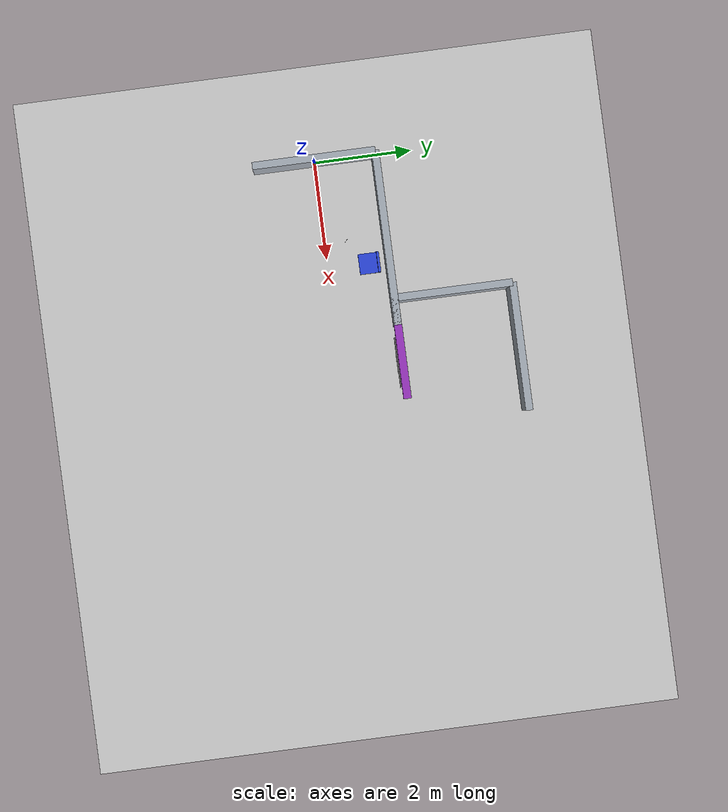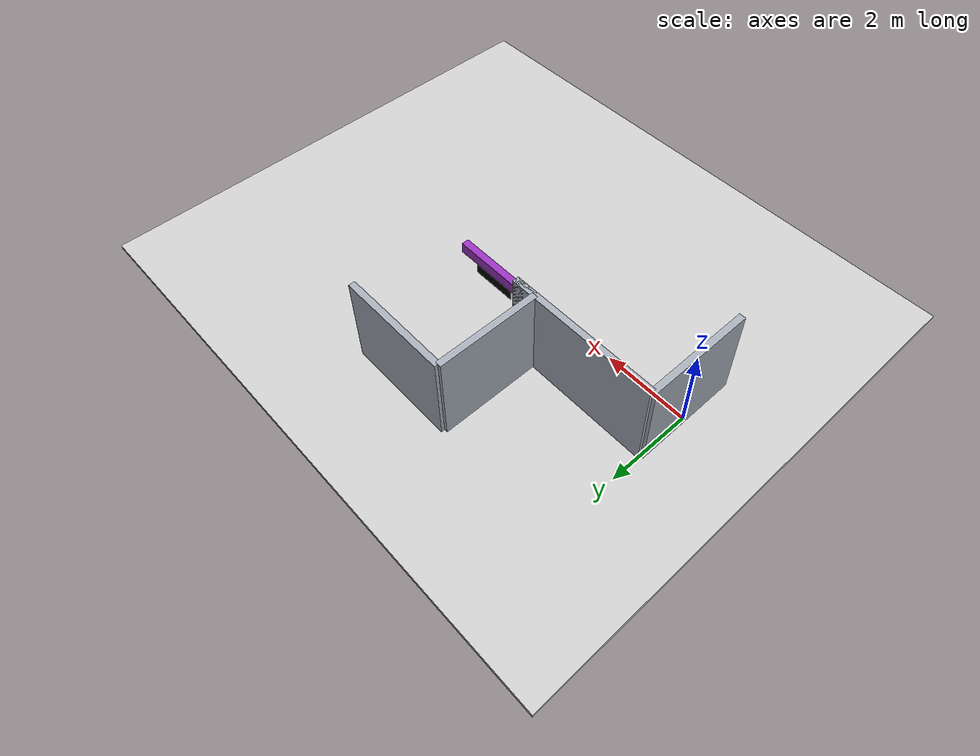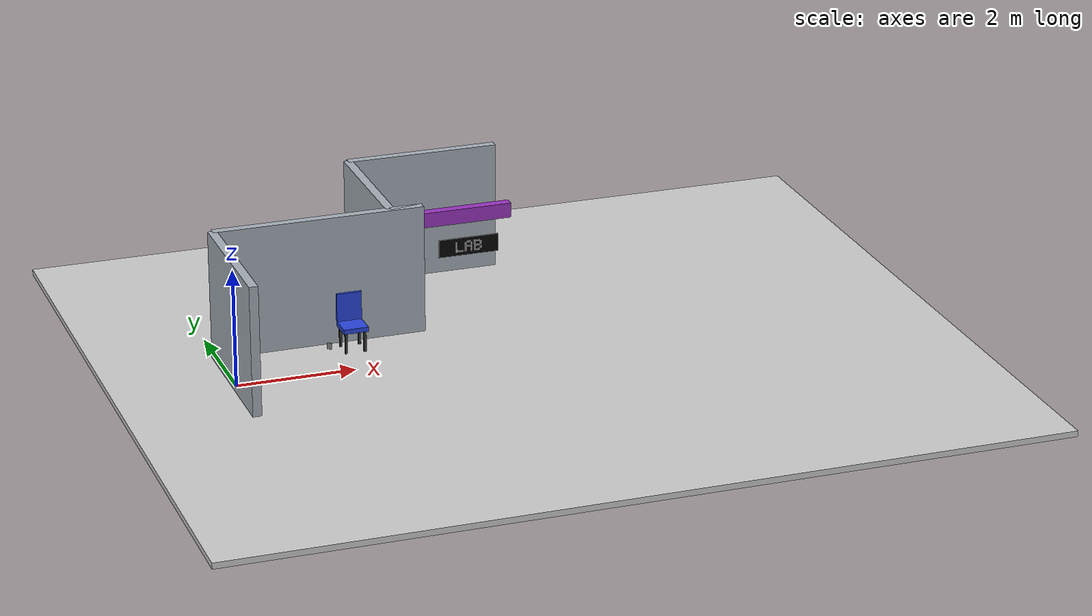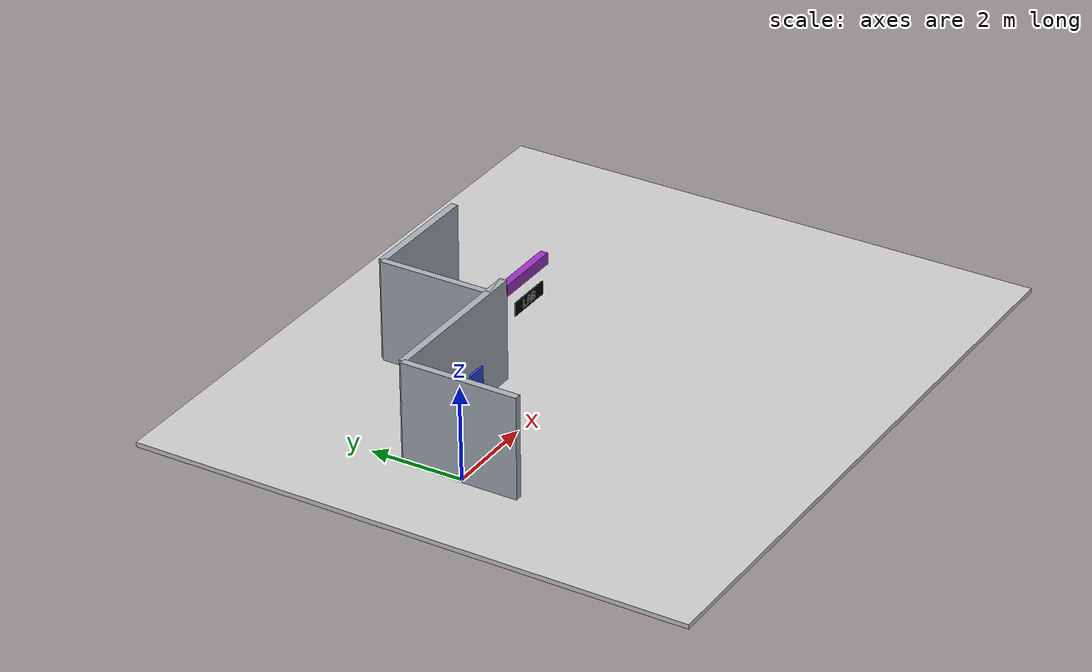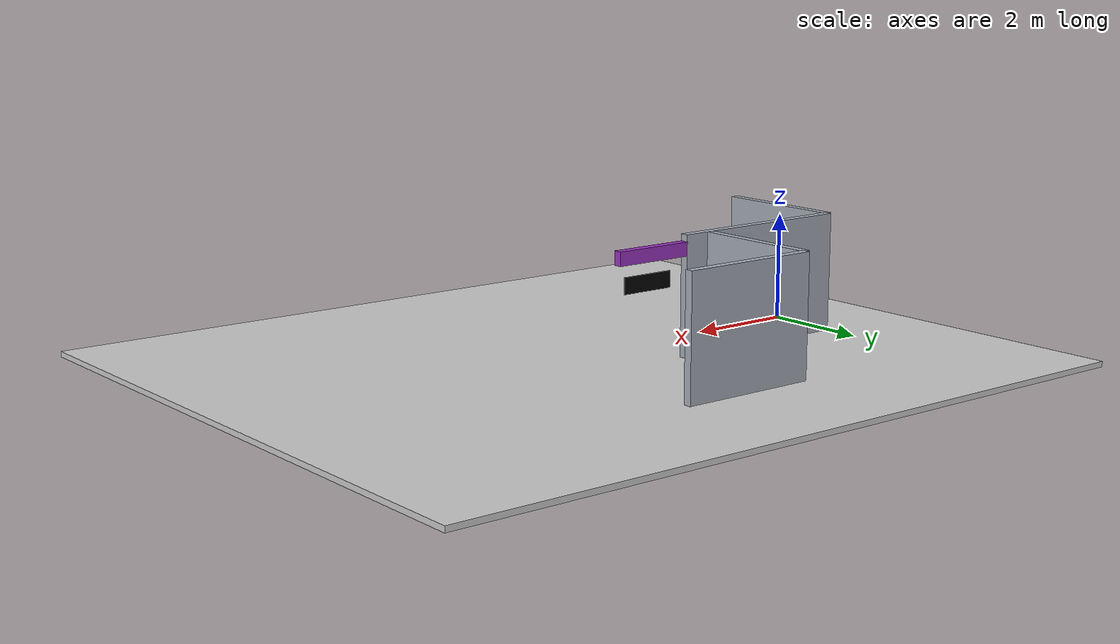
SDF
<sdf version="1.9">
 <world name="default">
  <model name="ground_plane">
   <static>true</static>
   <pose>4.95 0 -0.05 0 0 0</pose>
   <link name="body">
    <collision name="collision"><geometry><box><size>13.9 12 0.1</size></box></geometry></collision>
    <visual name="visual">
     <geometry><box><size>13.9 12 0.1</size></box></geometry>
     <material><ambient>0.8 0.8 0.8 1</ambient><diffuse>0.8 0.8 0.8 1</diffuse></material>
    </visual>
   </link>
  </model>
  <model name="start_wall">
   <static>true</static>
   <pose>0 0 1.1 0 0 0</pose>
   <link name="body">
    <collision name="collision"><geometry><box><size>0.15 2.5 2.2</size></box></geometry></collision>
    <visual name="visual">
     <geometry><box><size>0.15 2.5 2.2</size></box></geometry>
     <material><ambient>0.65 0.68 0.72 1</ambient><diffuse>0.65 0.68 0.72 1</diffuse></material>
    </visual>
   </link>
  </model>
  <model name="hall_1_1">
   <static>true</static>
   <pose>1.775 1.25 1.1 0 0 0</pose>
   <link name="body">
    <collision name="collision"><geometry><box><size>3.55 0.15 2.2</size></box></geometry></collision>
    <visual name="visual">
     <geometry><box><size>3.55 0.15 2.2</size></box></geometry>
     <material><ambient>0.65 0.68 0.72 1</ambient><diffuse>0.65 0.68 0.72 1</diffuse></material>
    </visual>
   </link>
  </model>
  <model name="room_1_1_-1">
   <static>true</static>
   <pose>3.0 2.45 1.1 0 0 0</pose>
   <link name="body">
    <collision name="collision"><geometry><box><size>0.15 2.4 2.2</size></box></geometry></collision>
    <visual name="visual">
     <geometry><box><size>0.15 2.4 2.2</size></box></geometry>
     <material><ambient>0.65 0.68 0.72 1</ambient><diffuse>0.65 0.68 0.72 1</diffuse></material>
    </visual>
   </link>
  </model>
  <model name="room_end_1_1">
   <static>true</static>
   <pose>4.3 3.65 1.1 0 0 0</pose>
   <link name="body">
    <collision name="collision"><geometry><box><size>2.6 0.15 2.2</size></box></geometry></collision>
    <visual name="visual">
     <geometry><box><size>2.6 0.15 2.2</size></box></geometry>
     <material><ambient>0.65 0.68 0.72 1</ambient><diffuse>0.65 0.68 0.72 1</diffuse></material>
    </visual>
   </link>
  </model>
  <model name="jamb_1_1_-1">
   <static>true</static>
   <pose>3.275 1.25 1.1 0 0 0</pose>
   <link name="body">
    <collision name="collision"><geometry><box><size>0.55 0.15 2.2</size></box></geometry></collision>
    <visual name="visual">
     <geometry><box><size>0.55 0.15 2.2</size></box></geometry>
     <material><ambient>0.65 0.68 0.72 1</ambient><diffuse>0.65 0.68 0.72 1</diffuse></material>
    </visual>
   </link>
  </model>
  <model name="chair_seat">
   <static>true</static>
   <pose>2.2 0.85 0.4 0 0 0</pose>
   <link name="body">
    <collision name="collision"><geometry><box><size>0.42 0.42 0.08</size></box></geometry></collision>
    <visual name="visual">
     <geometry><box><size>0.42 0.42 0.08</size></box></geometry>
     <material><ambient>0.16 0.27 0.86 1</ambient><diffuse>0.16 0.27 0.86 1</diffuse></material>
    </visual>
   </link>
  </model>
  <model name="chair_back">
   <static>true</static>
   <pose>2.2 1.04 0.67 0 0 0</pose>
   <link name="body">
    <collision name="collision"><geometry><box><size>0.42 0.05 0.5</size></box></geometry></collision>
    <visual name="visual">
     <geometry><box><size>0.42 0.05 0.5</size></box></geometry>
     <material><ambient>0.16 0.27 0.86 1</ambient><diffuse>0.16 0.27 0.86 1</diffuse></material>
    </visual>
   </link>
  </model>
  <model name="chair_leg_-0.16_-0.16">
   <static>true</static>
   <pose>2.04 0.69 0.19 0 0 0</pose>
   <link name="body">
    <collision name="collision"><geometry><box><size>0.04 0.04 0.38</size></box></geometry></collision>
    <visual name="visual">
     <geometry><box><size>0.04 0.04 0.38</size></box></geometry>
     <material><ambient>0.2 0.2 0.2 1</ambient><diffuse>0.2 0.2 0.2 1</diffuse></material>
    </visual>
   </link>
  </model>
  <model name="chair_leg_-0.16_0.16">
   <static>true</static>
   <pose>2.04 1.01 0.19 0 0 0</pose>
   <link name="body">
    <collision name="collision"><geometry><box><size>0.04 0.04 0.38</size></box></geometry></collision>
    <visual name="visual">
     <geometry><box><size>0.04 0.04 0.38</size></box></geometry>
     <material><ambient>0.2 0.2 0.2 1</ambient><diffuse>0.2 0.2 0.2 1</diffuse></material>
    </visual>
   </link>
  </model>
  <model name="chair_leg_0.16_-0.16">
   <static>true</static>
   <pose>2.3600000000000003 0.69 0.19 0 0 0</pose>
   <link name="body">
    <collision name="collision"><geometry><box><size>0.04 0.04 0.38</size></box></geometry></collision>
    <visual name="visual">
     <geometry><box><size>0.04 0.04 0.38</size></box></geometry>
     <material><ambient>0.2 0.2 0.2 1</ambient><diffuse>0.2 0.2 0.2 1</diffuse></material>
    </visual>
   </link>
  </model>
  <model name="chair_leg_0.16_0.16">
   <static>true</static>
   <pose>2.3600000000000003 1.01 0.19 0 0 0</pose>
   <link name="body">
    <collision name="collision"><geometry><box><size>0.04 0.04 0.38</size></box></geometry></collision>
    <visual name="visual">
     <geometry><box><size>0.04 0.04 0.38</size></box></geometry>
     <material><ambient>0.2 0.2 0.2 1</ambient><diffuse>0.2 0.2 0.2 1</diffuse></material>
    </visual>
   </link>
  </model>
  <model name="r3geo_base_r002_left_1_lintel">
   <static>true</static>
   <pose>4.3 1.25 1.95 0 0 0</pose>
   <link name="body">
    <collision name="collision"><geometry><box><size>1.5 0.16 0.25</size></box></geometry></collision>
    <visual name="visual">
     <geometry><box><size>1.5 0.16 0.25</size></box></geometry>
     <material><ambient>0.6 0.2 0.75 1</ambient><diffuse>0.6 0.2 0.75 1</diffuse></material>
    </visual>
   </link>
  </model>
  <model name="readable_r3geo_base_r002_left_1_entrance_corridor">
   <static>true</static>
   <pose>4.3 1.15 1.43 0 0 0</pose>
   <link name="lettering">
    <visual name="backboard">
     <geometry><box><size>1.02 0.018 0.3</size></box></geometry>
     <material>
      <ambient>.015 .015 .015 1</ambient>
      <diffuse>.015 .015 .015 1</diffuse>
      <emissive>.015 .015 .015 1</emissive>
     </material>
     <cast_shadows>false</cast_shadows>
    </visual>
    <visual name="letter_0_0_0">
     <pose>-0.208 -0.014 0.078 0 0 0</pose>
     <geometry><box><size>0.024439999999999996 0.008 0.024439999999999996</size></box></geometry>
     <material>
      <ambient>.96 .96 .96 1</ambient>
      <diffuse>.96 .96 .96 1</diffuse>
      <emissive>.96 .96 .96 1</emissive>
     </material>
     <cast_shadows>false</cast_shadows>
    </visual>
    <visual name="letter_0_1_0">
     <pose>-0.208 -0.014 0.052 0 0 0</pose>
     <geometry><box><size>0.024439999999999996 0.008 0.024439999999999996</size></box></geometry>
     <material>
      <ambient>.96 .96 .96 1</ambient>
      <diffuse>.96 .96 .96 1</diffuse>
      <emissive>.96 .96 .96 1</emissive>
     </material>
     <cast_shadows>false</cast_shadows>
    </visual>
    <visual name="letter_0_2_0">
     <pose>-0.208 -0.014 0.026 0 0 0</pose>
     <geometry><box><size>0.024439999999999996 0.008 0.024439999999999996</size></box></geometry>
     <material>
      <ambient>.96 .96 .96 1</ambient>
      <diffuse>.96 .96 .96 1</diffuse>
      <emissive>.96 .96 .96 1</emissive>
     </material>
     <cast_shadows>false</cast_shadows>
    </visual>
    <visual name="letter_0_3_0">
     <pose>-0.208 -0.014 0 0 0 0</pose>
     <geometry><box><size>0.024439999999999996 0.008 0.024439999999999996</size></box></geometry>
     <material>
      <ambient>.96 .96 .96 1</ambient>
      <diffuse>.96 .96 .96 1</diffuse>
      <emissive>.96 .96 .96 1</emissive>
     </material>
     <cast_shadows>false</cast_shadows>
    </visual>
    <visual name="letter_0_4_0">
     <pose>-0.208 -0.014 -0.026 0 0 0</pose>
     <geometry><box><size>0.024439999999999996 0.008 0.024439999999999996</size></box></geometry>
     <material>
      <ambient>.96 .96 .96 1</ambient>
      <diffuse>.96 .96 .96 1</diffuse>
      <emissive>.96 .96 .96 1</emissive>
     </material>
     <cast_shadows>false</cast_shadows>
    </visual>
    <visual name="letter_0_5_0">
     <pose>-0.208 -0.014 -0.052 0 0 0</pose>
     <geometry><box><size>0.024439999999999996 0.008 0.024439999999999996</size></box></geometry>
     <material>
      <ambient>.96 .96 .96 1</ambient>
      <diffuse>.96 .96 .96 1</diffuse>
      <emissive>.96 .96 .96 1</emissive>
     </material>
     <cast_shadows>false</cast_shadows>
    </visual>
    <visual name="letter_0_6_0">
     <pose>-0.208 -0.014 -0.078 0 0 0</pose>
     <geometry><box><size>0.024439999999999996 0.008 0.024439999999999996</size></box></geometry>
     <material>
      <ambient>.96 .96 .96 1</ambient>
      <diffuse>.96 .96 .96 1</diffuse>
      <emissive>.96 .96 .96 1</emissive>
     </material>
     <cast_shadows>false</cast_shadows>
    </visual>
    <visual name="letter_0_6_1">
     <pose>-0.182 -0.014 -0.078 0 0 0</pose>
     <geometry><box><size>0.024439999999999996 0.008 0.024439999999999996</size></box></geometry>
     <material>
      <ambient>.96 .96 .96 1</ambient>
      <diffuse>.96 .96 .96 1</diffuse>
      <emissive>.96 .96 .96 1</emissive>
     </material>
     <cast_shadows>false</cast_shadows>
    </visual>
    <visual name="letter_0_6_2">
     <pose>-0.156 -0.014 -0.078 0 0 0</pose>
     <geometry><box><size>0.024439999999999996 0.008 0.024439999999999996</size></box></geometry>
     <material>
      <ambient>.96 .96 .96 1</ambient>
      <diffuse>.96 .96 .96 1</diffuse>
      <emissive>.96 .96 .96 1</emissive>
     </material>
     <cast_shadows>false</cast_shadows>
    </visual>
    <visual name="letter_0_6_3">
     <pose>-0.13 -0.014 -0.078 0 0 0</pose>
     <geometry><box><size>0.024439999999999996 0.008 0.024439999999999996</size></box></geometry>
     <material>
      <ambient>.96 .96 .96 1</ambient>
      <diffuse>.96 .96 .96 1</diffuse>
      <emissive>.96 .96 .96 1</emissive>
     </material>
     <cast_shadows>false</cast_shadows>
    </visual>
    <visual name="letter_0_6_4">
     <pose>-0.104 -0.014 -0.078 0 0 0</pose>
     <geometry><box><size>0.024439999999999996 0.008 0.024439999999999996</size></box></geometry>
     <material>
      <ambient>.96 .96 .96 1</ambient>
      <diffuse>.96 .96 .96 1</diffuse>
      <emissive>.96 .96 .96 1</emissive>
     </material>
     <cast_shadows>false</cast_shadows>
    </visual>
    <visual name="letter_1_0_1">
     <pose>-0.026 -0.014 0.078 0 0 0</pose>
     <geometry><box><size>0.024439999999999996 0.008 0.024439999999999996</size></box></geometry>
     <material>
      <ambient>.96 .96 .96 1</ambient>
      <diffuse>.96 .96 .96 1</diffuse>
      <emissive>.96 .96 .96 1</emissive>
     </material>
     <cast_shadows>false</cast_shadows>
    </visual>
    <visual name="letter_1_0_2">
     <pose>0 -0.014 0.078 0 0 0</pose>
     <geometry><box><size>0.024439999999999996 0.008 0.024439999999999996</size></box></geometry>
     <material>
      <ambient>.96 .96 .96 1</ambient>
      <diffuse>.96 .96 .96 1</diffuse>
      <emissive>.96 .96 .96 1</emissive>
     </material>
     <cast_shadows>false</cast_shadows>
    </visual>
    <visual name="letter_1_0_3">
     <pose>0.026 -0.014 0.078 0 0 0</pose>
     <geometry><box><size>0.024439999999999996 0.008 0.024439999999999996</size></box></geometry>
     <material>
      <ambient>.96 .96 .96 1</ambient>
      <diffuse>.96 .96 .96 1</diffuse>
      <emissive>.96 .96 .96 1</emissive>
     </material>
     <cast_shadows>false</cast_shadows>
    </visual>
    <visual name="letter_1_1_0">
     <pose>-0.052 -0.014 0.052 0 0 0</pose>
     <geometry><box><size>0.024439999999999996 0.008 0.024439999999999996</size></box></geometry>
     <material>
      <ambient>.96 .96 .96 1</ambient>
      <diffuse>.96 .96 .96 1</diffuse>
      <emissive>.96 .96 .96 1</emissive>
     </material>
     <cast_shadows>false</cast_shadows>
    </visual>
    <visual name="letter_1_1_4">
     <pose>0.052 -0.014 0.052 0 0 0</pose>
     <geometry><box><size>0.024439999999999996 0.008 0.024439999999999996</size></box></geometry>
     <material>
      <ambient>.96 .96 .96 1</ambient>
      <diffuse>.96 .96 .96 1</diffuse>
      <emissive>.96 .96 .96 1</emissive>
     </material>
     <cast_shadows>false</cast_shadows>
    </visual>
    <visual name="letter_1_2_0">
     <pose>-0.052 -0.014 0.026 0 0 0</pose>
     <geometry><box><size>0.024439999999999996 0.008 0.024439999999999996</size></box></geometry>
     <material>
      <ambient>.96 .96 .96 1</ambient>
      <diffuse>.96 .96 .96 1</diffuse>
      <emissive>.96 .96 .96 1</emissive>
     </material>
     <cast_shadows>false</cast_shadows>
    </visual>
    <visual name="letter_1_2_4">
     <pose>0.052 -0.014 0.026 0 0 0</pose>
     <geometry><box><size>0.024439999999999996 0.008 0.024439999999999996</size></box></geometry>
     <material>
      <ambient>.96 .96 .96 1</ambient>
      <diffuse>.96 .96 .96 1</diffuse>
      <emissive>.96 .96 .96 1</emissive>
     </material>
     <cast_shadows>false</cast_shadows>
    </visual>
    <visual name="letter_1_3_0">
     <pose>-0.052 -0.014 0 0 0 0</pose>
     <geometry><box><size>0.024439999999999996 0.008 0.024439999999999996</size></box></geometry>
     <material>
      <ambient>.96 .96 .96 1</ambient>
      <diffuse>.96 .96 .96 1</diffuse>
      <emissive>.96 .96 .96 1</emissive>
     </material>
     <cast_shadows>false</cast_shadows>
    </visual>
    <visual name="letter_1_3_1">
     <pose>-0.026 -0.014 0 0 0 0</pose>
     <geometry><box><size>0.024439999999999996 0.008 0.024439999999999996</size></box></geometry>
     <material>
      <ambient>.96 .96 .96 1</ambient>
      <diffuse>.96 .96 .96 1</diffuse>
      <emissive>.96 .96 .96 1</emissive>
     </material>
     <cast_shadows>false</cast_shadows>
    </visual>
    <visual name="letter_1_3_2">
     <pose>0 -0.014 0 0 0 0</pose>
     <geometry><box><size>0.024439999999999996 0.008 0.024439999999999996</size></box></geometry>
     <material>
      <ambient>.96 .96 .96 1</ambient>
      <diffuse>.96 .96 .96 1</diffuse>
      <emissive>.96 .96 .96 1</emissive>
     </material>
     <cast_shadows>false</cast_shadows>
    </visual>
    <visual name="letter_1_3_3">
     <pose>0.026 -0.014 0 0 0 0</pose>
     <geometry><box><size>0.024439999999999996 0.008 0.024439999999999996</size></box></geometry>
     <material>
      <ambient>.96 .96 .96 1</ambient>
      <diffuse>.96 .96 .96 1</diffuse>
      <emissive>.96 .96 .96 1</emissive>
     </material>
     <cast_shadows>false</cast_shadows>
    </visual>
    <visual name="letter_1_3_4">
     <pose>0.052 -0.014 0 0 0 0</pose>
     <geometry><box><size>0.024439999999999996 0.008 0.024439999999999996</size></box></geometry>
     <material>
      <ambient>.96 .96 .96 1</ambient>
      <diffuse>.96 .96 .96 1</diffuse>
      <emissive>.96 .96 .96 1</emissive>
     </material>
     <cast_shadows>false</cast_shadows>
    </visual>
    <visual name="letter_1_4_0">
     <pose>-0.052 -0.014 -0.026 0 0 0</pose>
     <geometry><box><size>0.024439999999999996 0.008 0.024439999999999996</size></box></geometry>
     <material>
      <ambient>.96 .96 .96 1</ambient>
      <diffuse>.96 .96 .96 1</diffuse>
      <emissive>.96 .96 .96 1</emissive>
     </material>
     <cast_shadows>false</cast_shadows>
    </visual>
    <visual name="letter_1_4_4">
     <pose>0.052 -0.014 -0.026 0 0 0</pose>
     <geometry><box><size>0.024439999999999996 0.008 0.024439999999999996</size></box></geometry>
     <material>
      <ambient>.96 .96 .96 1</ambient>
      <diffuse>.96 .96 .96 1</diffuse>
      <emissive>.96 .96 .96 1</emissive>
     </material>
     <cast_shadows>false</cast_shadows>
    </visual>
    <visual name="letter_1_5_0">
     <pose>-0.052 -0.014 -0.052 0 0 0</pose>
     <geometry><box><size>0.024439999999999996 0.008 0.024439999999999996</size></box></geometry>
     <material>
      <ambient>.96 .96 .96 1</ambient>
      <diffuse>.96 .96 .96 1</diffuse>
      <emissive>.96 .96 .96 1</emissive>
     </material>
     <cast_shadows>false</cast_shadows>
    </visual>
    <visual name="letter_1_5_4">
     <pose>0.052 -0.014 -0.052 0 0 0</pose>
     <geometry><box><size>0.024439999999999996 0.008 0.024439999999999996</size></box></geometry>
     <material>
      <ambient>.96 .96 .96 1</ambient>
      <diffuse>.96 .96 .96 1</diffuse>
      <emissive>.96 .96 .96 1</emissive>
     </material>
     <cast_shadows>false</cast_shadows>
    </visual>
    <visual name="letter_1_6_0">
     <pose>-0.052 -0.014 -0.078 0 0 0</pose>
     <geometry><box><size>0.024439999999999996 0.008 0.024439999999999996</size></box></geometry>
     <material>
      <ambient>.96 .96 .96 1</ambient>
      <diffuse>.96 .96 .96 1</diffuse>
      <emissive>.96 .96 .96 1</emissive>
     </material>
     <cast_shadows>false</cast_shadows>
    </visual>
    <visual name="letter_1_6_4">
     <pose>0.052 -0.014 -0.078 0 0 0</pose>
     <geometry><box><size>0.024439999999999996 0.008 0.024439999999999996</size></box></geometry>
     <material>
      <ambient>.96 .96 .96 1</ambient>
      <diffuse>.96 .96 .96 1</diffuse>
      <emissive>.96 .96 .96 1</emissive>
     </material>
     <cast_shadows>false</cast_shadows>
    </visual>
    <visual name="letter_2_0_0">
     <pose>0.104 -0.014 0.078 0 0 0</pose>
     <geometry><box><size>0.024439999999999996 0.008 0.024439999999999996</size></box></geometry>
     <material>
      <ambient>.96 .96 .96 1</ambient>
      <diffuse>.96 .96 .96 1</diffuse>
      <emissive>.96 .96 .96 1</emissive>
     </material>
     <cast_shadows>false</cast_shadows>
    </visual>
    <visual name="letter_2_0_1">
     <pose>0.13 -0.014 0.078 0 0 0</pose>
     <geometry><box><size>0.024439999999999996 0.008 0.024439999999999996</size></box></geometry>
     <material>
      <ambient>.96 .96 .96 1</ambient>
      <diffuse>.96 .96 .96 1</diffuse>
      <emissive>.96 .96 .96 1</emissive>
     </material>
     <cast_shadows>false</cast_shadows>
    </visual>
    <visual name="letter_2_0_2">
     <pose>0.156 -0.014 0.078 0 0 0</pose>
     <geometry><box><size>0.024439999999999996 0.008 0.024439999999999996</size></box></geometry>
     <material>
      <ambient>.96 .96 .96 1</ambient>
      <diffuse>.96 .96 .96 1</diffuse>
      <emissive>.96 .96 .96 1</emissive>
     </material>
     <cast_shadows>false</cast_shadows>
    </visual>
    <visual name="letter_2_0_3">
     <pose>0.182 -0.014 0.078 0 0 0</pose>
     <geometry><box><size>0.024439999999999996 0.008 0.024439999999999996</size></box></geometry>
     <material>
      <ambient>.96 .96 .96 1</ambient>
      <diffuse>.96 .96 .96 1</diffuse>
      <emissive>.96 .96 .96 1</emissive>
     </material>
     <cast_shadows>false</cast_shadows>
    </visual>
    <visual name="letter_2_1_0">
     <pose>0.104 -0.014 0.052 0 0 0</pose>
     <geometry><box><size>0.024439999999999996 0.008 0.024439999999999996</size></box></geometry>
     <material>
      <ambient>.96 .96 .96 1</ambient>
      <diffuse>.96 .96 .96 1</diffuse>
      <emissive>.96 .96 .96 1</emissive>
     </material>
     <cast_shadows>false</cast_shadows>
    </visual>
    <visual name="letter_2_1_4">
     <pose>0.208 -0.014 0.052 0 0 0</pose>
     <geometry><box><size>0.024439999999999996 0.008 0.024439999999999996</size></box></geometry>
     <material>
      <ambient>.96 .96 .96 1</ambient>
      <diffuse>.96 .96 .96 1</diffuse>
      <emissive>.96 .96 .96 1</emissive>
     </material>
     <cast_shadows>false</cast_shadows>
    </visual>
    <visual name="letter_2_2_0">
     <pose>0.104 -0.014 0.026 0 0 0</pose>
     <geometry><box><size>0.024439999999999996 0.008 0.024439999999999996</size></box></geometry>
     <material>
      <ambient>.96 .96 .96 1</ambient>
      <diffuse>.96 .96 .96 1</diffuse>
      <emissive>.96 .96 .96 1</emissive>
     </material>
     <cast_shadows>false</cast_shadows>
    </visual>
    <visual name="letter_2_2_4">
     <pose>0.208 -0.014 0.026 0 0 0</pose>
     <geometry><box><size>0.024439999999999996 0.008 0.024439999999999996</size></box></geometry>
     <material>
      <ambient>.96 .96 .96 1</ambient>
      <diffuse>.96 .96 .96 1</diffuse>
      <emissive>.96 .96 .96 1</emissive>
     </material>
     <cast_shadows>false</cast_shadows>
    </visual>
    <visual name="letter_2_3_0">
     <pose>0.104 -0.014 0 0 0 0</pose>
     <geometry><box><size>0.024439999999999996 0.008 0.024439999999999996</size></box></geometry>
     <material>
      <ambient>.96 .96 .96 1</ambient>
      <diffuse>.96 .96 .96 1</diffuse>
      <emissive>.96 .96 .96 1</emissive>
     </material>
     <cast_shadows>false</cast_shadows>
    </visual>
    <visual name="letter_2_3_1">
     <pose>0.13 -0.014 0 0 0 0</pose>
     <geometry><box><size>0.024439999999999996 0.008 0.024439999999999996</size></box></geometry>
     <material>
      <ambient>.96 .96 .96 1</ambient>
      <diffuse>.96 .96 .96 1</diffuse>
      <emissive>.96 .96 .96 1</emissive>
     </material>
     <cast_shadows>false</cast_shadows>
    </visual>
    <visual name="letter_2_3_2">
     <pose>0.156 -0.014 0 0 0 0</pose>
     <geometry><box><size>0.024439999999999996 0.008 0.024439999999999996</size></box></geometry>
     <material>
      <ambient>.96 .96 .96 1</ambient>
      <diffuse>.96 .96 .96 1</diffuse>
      <emissive>.96 .96 .96 1</emissive>
     </material>
     <cast_shadows>false</cast_shadows>
    </visual>
    <visual name="letter_2_3_3">
     <pose>0.182 -0.014 0 0 0 0</pose>
     <geometry><box><size>0.024439999999999996 0.008 0.024439999999999996</size></box></geometry>
     <material>
      <ambient>.96 .96 .96 1</ambient>
      <diffuse>.96 .96 .96 1</diffuse>
      <emissive>.96 .96 .96 1</emissive>
     </material>
     <cast_shadows>false</cast_shadows>
    </visual>
    <visual name="letter_2_4_0">
     <pose>0.104 -0.014 -0.026 0 0 0</pose>
     <geometry><box><size>0.024439999999999996 0.008 0.024439999999999996</size></box></geometry>
     <material>
      <ambient>.96 .96 .96 1</ambient>
      <diffuse>.96 .96 .96 1</diffuse>
      <emissive>.96 .96 .96 1</emissive>
     </material>
     <cast_shadows>false</cast_shadows>
    </visual>
    <visual name="letter_2_4_4">
     <pose>0.208 -0.014 -0.026 0 0 0</pose>
     <geometry><box><size>0.024439999999999996 0.008 0.024439999999999996</size></box></geometry>
     <material>
      <ambient>.96 .96 .96 1</ambient>
      <diffuse>.96 .96 .96 1</diffuse>
      <emissive>.96 .96 .96 1</emissive>
     </material>
     <cast_shadows>false</cast_shadows>
    </visual>
    <visual name="letter_2_5_0">
     <pose>0.104 -0.014 -0.052 0 0 0</pose>
     <geometry><box><size>0.024439999999999996 0.008 0.024439999999999996</size></box></geometry>
     <material>
      <ambient>.96 .96 .96 1</ambient>
      <diffuse>.96 .96 .96 1</diffuse>
      <emissive>.96 .96 .96 1</emissive>
     </material>
     <cast_shadows>false</cast_shadows>
    </visual>
    <visual name="letter_2_5_4">
     <pose>0.208 -0.014 -0.052 0 0 0</pose>
     <geometry><box><size>0.024439999999999996 0.008 0.024439999999999996</size></box></geometry>
     <material>
      <ambient>.96 .96 .96 1</ambient>
      <diffuse>.96 .96 .96 1</diffuse>
      <emissive>.96 .96 .96 1</emissive>
     </material>
     <cast_shadows>false</cast_shadows>
    </visual>
    <visual name="letter_2_6_0">
     <pose>0.104 -0.014 -0.078 0 0 0</pose>
     <geometry><box><size>0.024439999999999996 0.008 0.024439999999999996</size></box></geometry>
     <material>
      <ambient>.96 .96 .96 1</ambient>
      <diffuse>.96 .96 .96 1</diffuse>
      <emissive>.96 .96 .96 1</emissive>
     </material>
     <cast_shadows>false</cast_shadows>
    </visual>
    <visual name="letter_2_6_1">
     <pose>0.13 -0.014 -0.078 0 0 0</pose>
     <geometry><box><size>0.024439999999999996 0.008 0.024439999999999996</size></box></geometry>
     <material>
      <ambient>.96 .96 .96 1</ambient>
      <diffuse>.96 .96 .96 1</diffuse>
      <emissive>.96 .96 .96 1</emissive>
     </material>
     <cast_shadows>false</cast_shadows>
    </visual>
    <visual name="letter_2_6_2">
     <pose>0.156 -0.014 -0.078 0 0 0</pose>
     <geometry><box><size>0.024439999999999996 0.008 0.024439999999999996</size></box></geometry>
     <material>
      <ambient>.96 .96 .96 1</ambient>
      <diffuse>.96 .96 .96 1</diffuse>
      <emissive>.96 .96 .96 1</emissive>
     </material>
     <cast_shadows>false</cast_shadows>
    </visual>
    <visual name="letter_2_6_3">
     <pose>0.182 -0.014 -0.078 0 0 0</pose>
     <geometry><box><size>0.024439999999999996 0.008 0.024439999999999996</size></box></geometry>
     <material>
      <ambient>.96 .96 .96 1</ambient>
      <diffuse>.96 .96 .96 1</diffuse>
      <emissive>.96 .96 .96 1</emissive>
     </material>
     <cast_shadows>false</cast_shadows>
    </visual>
   </link>
  </model>
  <model name="expansion_occluder_dev_01-r002-blue-chair">
   <static>true</static>
   <pose>1.6809067358588736 0.4393967757127535 0.2868261481420396 -1.5700000000000005 -2.7755575615628914e-16 -0.7391785571810138</pose>
   <link name="visual_only">
    <visual name="neutral_occluder">
     <geometry><box><size>0.08365521818127292 0.11252516148028431 0.002</size></box></geometry>
     <material><ambient>.45 .45 .45 1</ambient><diffuse>.45 .45 .45 1</diffuse></material>
     <cast_shadows>false</cast_shadows>
    </visual>
   </link>
  </model>
 </world>
</sdf>
